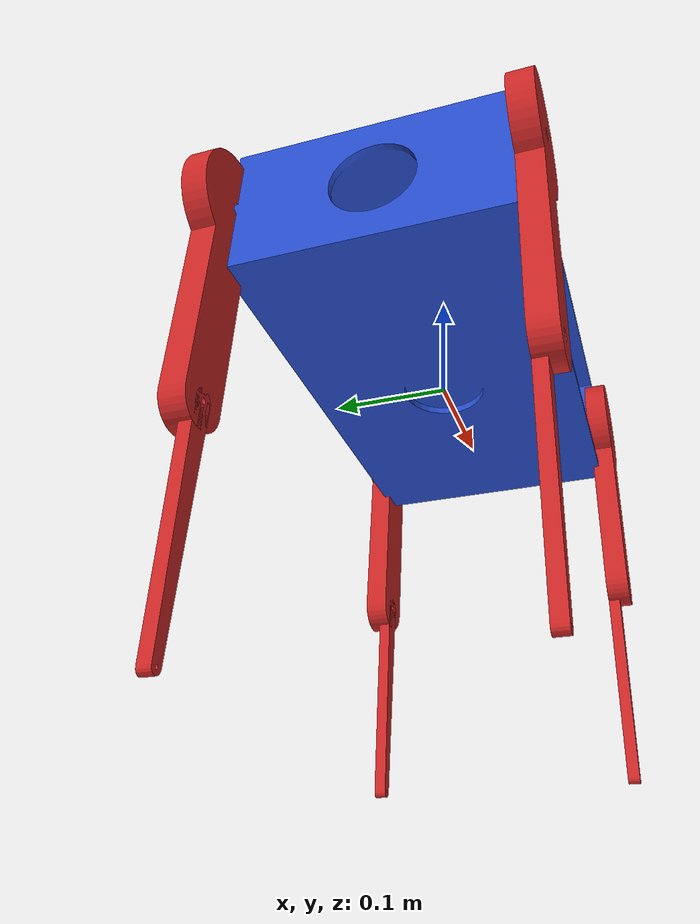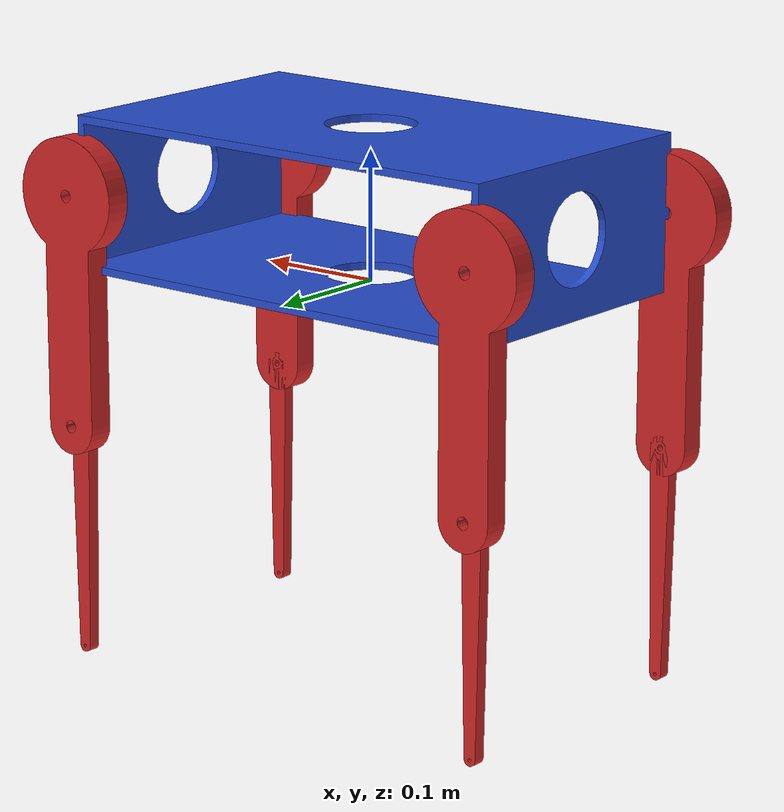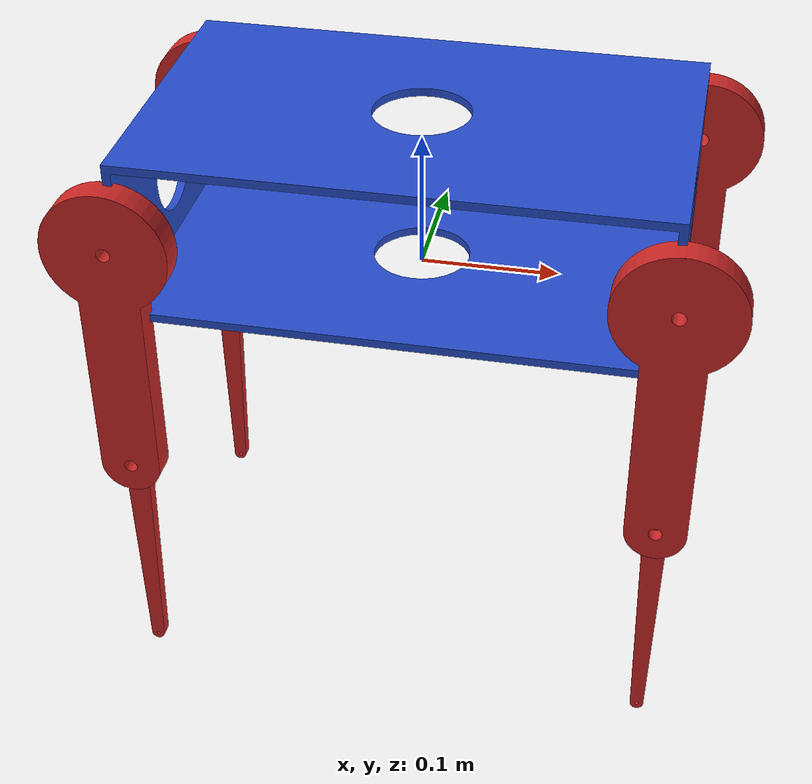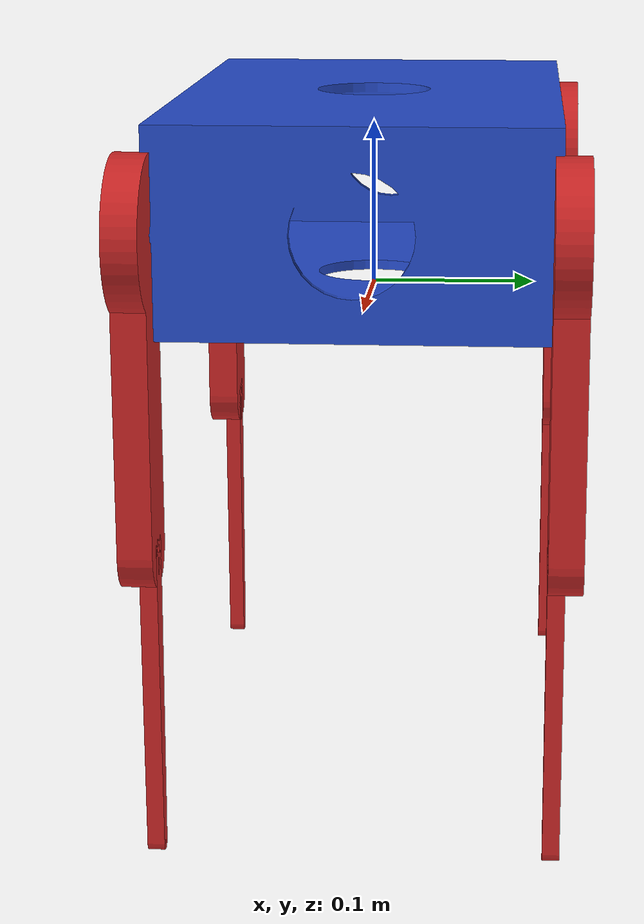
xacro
<?xml version="1.0"?>
<robot name="quadrupedal_robot2" xmlns:xacro="https://ros.org/wiki/xacro">

	<xacro:property name="PI" value="3.14159"/>
	<xacro:property name="PATH" value=""/>

	<xacro:macro name="link_macro" params="name ixx ixy ixz iyy iyz izz mass filename color">
		<link name="${name}">
			<inertial>
				<mass value="${mass}"/>
				<inertia ixx="${ixx}" ixy="${ixy}"  ixz="${ixz}" iyy="${iyy}" iyz="${iyz}" izz="${izz}"/>
			</inertial>
			<visual>
				<geometry>
					<mesh filename="${filename}"/>
				</geometry>
			</visual>
			<collision>
				<geometry>
					<mesh filename="${filename}"/>
				</geometry>
			</collision>
		</link>
		<gazebo reference="${name}">
			<mu1 value="1.0"/>
			<mu2 value="2.0"/>
			<kp value="1000000"/>
			<kd value="1.0"/>
			<material>Gazebo/${color}</material>
		</gazebo>
	</xacro:macro>

	<xacro:macro name="joint_macro" params="name xyz rpy parent child type">
		<joint name="${name}" type="${type}">
			<parent link="${parent}"/>
			<child link="${child}"/>
			<axis xyz="0 1 0"/>
			<origin xyz="${xyz}" rpy="${rpy}"/>
			<dynamics damping="0.02"/>
			<limit lower="-2.5" upper="2.5" effort="8.0" velocity="6.0"/>
		</joint>
	</xacro:macro>

	<xacro:macro name="trans_macro" params="name joint_name act_name">
		<transmission name="${name}">
			<type>transmission_interface/SimpleTransmission</type>
			<joint name="${joint_name}">
				<hardwareInterface>hardware_interface/EffortJointInterface</hardwareInterface>
			</joint>
			<actuator name="${act_name}">
				<hardwareInterface>hardware_interface/EffortJointInterface</hardwareInterface>
				<mechanismReduction>1</mechanismReduction>
			</actuator>
		</transmission>
	</xacro:macro>

	<xacro:link_macro name="body" ixx="0.037696260802" ixy="0.0"  ixz="0.0" iyy="0.079564092870" iyz="0.0" izz="0.073777565481" mass="3.387196" filename="${PATH}/meshes/stl/body.stl" color="Blue"/>

	<!-- right fore leg -->
	<xacro:joint_macro name="rf_body_joint" xyz="0.19 -0.11 0.06" rpy="0.0 0.0 ${PI}" parent="body" child="rf_upper_link" type="revolute"/>
	<xacro:trans_macro name="rf_body_joint_trans" joint_name="rf_body_joint" act_name="rf_body_motor"/>
	<xacro:link_macro name="rf_upper_link" ixx="0.002538913384" ixy="0.0" ixz="0.0" iyy="0.002672551616" iyz="0.000139675629" izz="0.000251042991" mass="0.4208" filename="${PATH}/meshes/stl/upper_leg.stl" color="Red"/>

	<xacro:joint_macro name="rf_knee_joint" xyz="0.0 0.0 -0.18" rpy="0.0 0.0 0.0" parent="rf_upper_link" child="rf_under_link" type="revolute"/>
	<xacro:trans_macro name="rf_knee_joint_trans" joint_name="rf_knee_joint" act_name="rf_knee_motor"/>
	<xacro:link_macro name="rf_under_link" ixx="0.002538913384" ixy="0.0" ixz="0.0" iyy="0.002672551616" iyz="0.000139675629" izz="0.000251042991" mass="0.4208" filename="${PATH}/meshes/stl/under_leg.stl" color="Red"/>

	<!-- left fore leg -->
	<xacro:joint_macro name="lf_body_joint" xyz="0.19 0.11 0.06" rpy="0.0 0.0 0.0" parent="body" child="lf_upper_link" type="revolute"/>
	<xacro:trans_macro name="lf_body_joint_trans" joint_name="lf_body_joint" act_name="lf_body_motor"/>
	<xacro:link_macro name="lf_upper_link" ixx="0.002538913384" ixy="0.0" ixz="0.0" iyy="0.002672551616" iyz="0.000139675629" izz="0.000251042991" mass="0.4208" filename="${PATH}/meshes/stl/upper_leg.stl" color="Red"/>

	<xacro:joint_macro name="lf_knee_joint" xyz="0.0 0.0 -0.18" rpy="0.0 0.0 0.0" parent="lf_upper_link" child="lf_under_link" type="revolute"/>
	<xacro:trans_macro name="lf_knee_joint_trans" joint_name="lf_knee_joint" act_name="lf_knee_motor"/>
	<xacro:link_macro name="lf_under_link" ixx="0.002538913384" ixy="0.0" ixz="0.0" iyy="0.002672551616" iyz="0.000139675629" izz="0.000251042991" mass="0.4208" filename="${PATH}/meshes/stl/under_leg.stl" color="Red"/>

	<!-- right hind leg -->
	<xacro:joint_macro name="rh_body_joint" xyz="-0.19 -0.11 0.06" rpy="0.0 0.0 ${PI}" parent="body" child="rh_upper_link" type="revolute"/>
	<xacro:trans_macro name="rh_body_joint_trans" joint_name="rh_body_joint" act_name="rh_body_motor"/>
	<xacro:link_macro name="rh_upper_link" ixx="0.002538913384" ixy="0.0" ixz="0.0" iyy="0.002672551616" iyz="0.000139675629" izz="0.000251042991" mass="0.4208" filename="${PATH}/meshes/stl/upper_leg.stl" color="Red"/>

	<xacro:joint_macro name="rh_knee_joint" xyz="0.0 0.0 -0.18" rpy="0.0 0.0 0.0" parent="rh_upper_link" child="rh_under_link" type="revolute"/>
	<xacro:trans_macro name="rh_knee_joint_trans" joint_name="rh_knee_joint" act_name="rh_knee_motor"/>
	<xacro:link_macro name="rh_under_link" ixx="0.002538913384" ixy="0.0" ixz="0.0" iyy="0.002672551616" iyz="0.000139675629" izz="0.000251042991" mass="0.4208" filename="${PATH}/meshes/stl/under_leg.stl" color="Red"/>

	<!-- left hind leg -->
	<xacro:joint_macro name="lh_body_joint" xyz="-0.19 0.11 0.06" rpy="0.0 0.0 0.0" parent="body" child="lh_upper_link" type="revolute"/>
	<xacro:trans_macro name="lh_body_joint_trans" joint_name="lh_body_joint" act_name="lh_body_motor"/>
	<xacro:link_macro name="lh_upper_link" ixx="0.002538913384" ixy="0.0" ixz="0.0" iyy="0.002672551616" iyz="0.000139675629" izz="0.000251042991" mass="0.4208" filename="${PATH}/meshes/stl/upper_leg.stl" color="Red"/>

	<xacro:joint_macro name="lh_knee_joint" xyz="0.0 0.0 -0.18" rpy="0.0 0.0 0.0" parent="lh_upper_link" child="lh_under_link" type="revolute"/>
	<xacro:trans_macro name="lh_knee_joint_trans" joint_name="lh_knee_joint" act_name="lh_knee_motor"/>
	<xacro:link_macro name="lh_under_link" ixx="0.002538913384" ixy="0.0" ixz="0.0" iyy="0.002672551616" iyz="0.000139675629" izz="0.000251042991" mass="0.4208" filename="${PATH}/meshes/stl/under_leg.stl" color="Red"/>

</robot>
